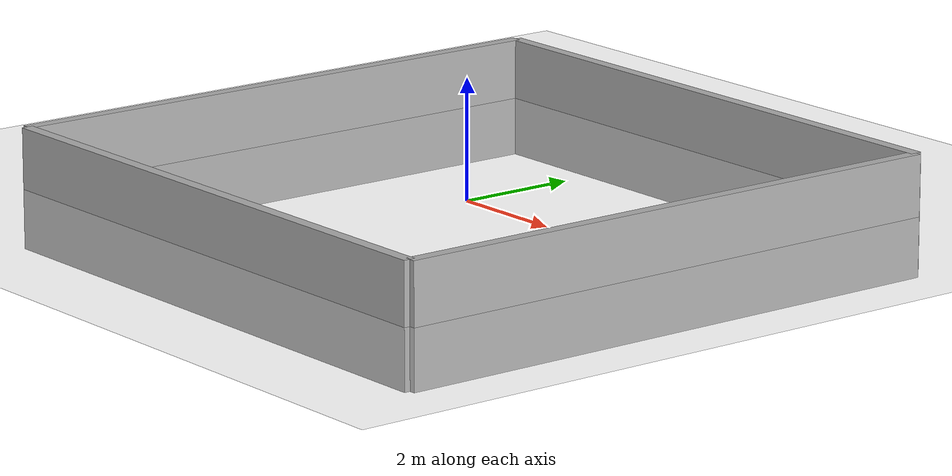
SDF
<?xml version="1.0"?>
<sdf version="1.6">
  <world name="indoor_world">

    <!-- Physics settings -->
    <physics type="ode">
      <real_time_update_rate>1000.0</real_time_update_rate>
      <max_step_size>0.001</max_step_size>
      <real_time_factor>1</real_time_factor>
    </physics>

    <!-- A global light source -->
    <include>
      <uri>model://sun</uri>
    </include>

    <!-- A ground plane -->
    <include>
      <uri>model://ground_plane</uri>
    </include>

    <!-- Indoor environment - walls -->
    <model name="wall_1">
      <static>true</static>
      <pose>5 0 0 0 0 0</pose>
      <link name="link">
        <collision name="collision">
          <geometry>
            <box>
              <size>0.2 10 2</size>
            </box>
          </geometry>
        </collision>
        <visual name="visual">
          <geometry>
            <box>
              <size>0.2 10 2</size>
            </box>
          </geometry>
          <material>
            <ambient>0.7 0.7 0.7 1</ambient>
            <diffuse>0.7 0.7 0.7 1</diffuse>
          </material>
        </visual>
      </link>
    </model>

    <model name="wall_2">
      <static>true</static>
      <pose>-5 0 0 0 0 0</pose>
      <link name="link">
        <collision name="collision">
          <geometry>
            <box>
              <size>0.2 10 2</size>
            </box>
          </geometry>
        </collision>
        <visual name="visual">
          <geometry>
            <box>
              <size>0.2 10 2</size>
            </box>
          </geometry>
          <material>
            <ambient>0.7 0.7 0.7 1</ambient>
            <diffuse>0.7 0.7 0.7 1</diffuse>
          </material>
        </visual>
      </link>
    </model>

    <model name="wall_3">
      <static>true</static>
      <pose>0 5 0 0 0 1.5708</pose>
      <link name="link">
        <collision name="collision">
          <geometry>
            <box>
              <size>0.2 10 2</size>
            </box>
          </geometry>
        </collision>
        <visual name="visual">
          <geometry>
            <box>
              <size>0.2 10 2</size>
            </box>
          </geometry>
          <material>
            <ambient>0.7 0.7 0.7 1</ambient>
            <diffuse>0.7 0.7 0.7 1</diffuse>
          </material>
        </visual>
      </link>
    </model>

    <model name="wall_4">
      <static>true</static>
      <pose>0 -5 0 0 0 1.5708</pose>
      <link name="link">
        <collision name="collision">
          <geometry>
            <box>
              <size>0.2 10 2</size>
            </box>
          </geometry>
        </collision>
        <visual name="visual">
          <geometry>
            <box>
              <size>0.2 10 2</size>
            </box>
          </geometry>
          <material>
            <ambient>0.7 0.7 0.7 1</ambient>
            <diffuse>0.7 0.7 0.7 1</diffuse>
          </material>
        </visual>
      </link>
    </model>

  </world>
</sdf>
